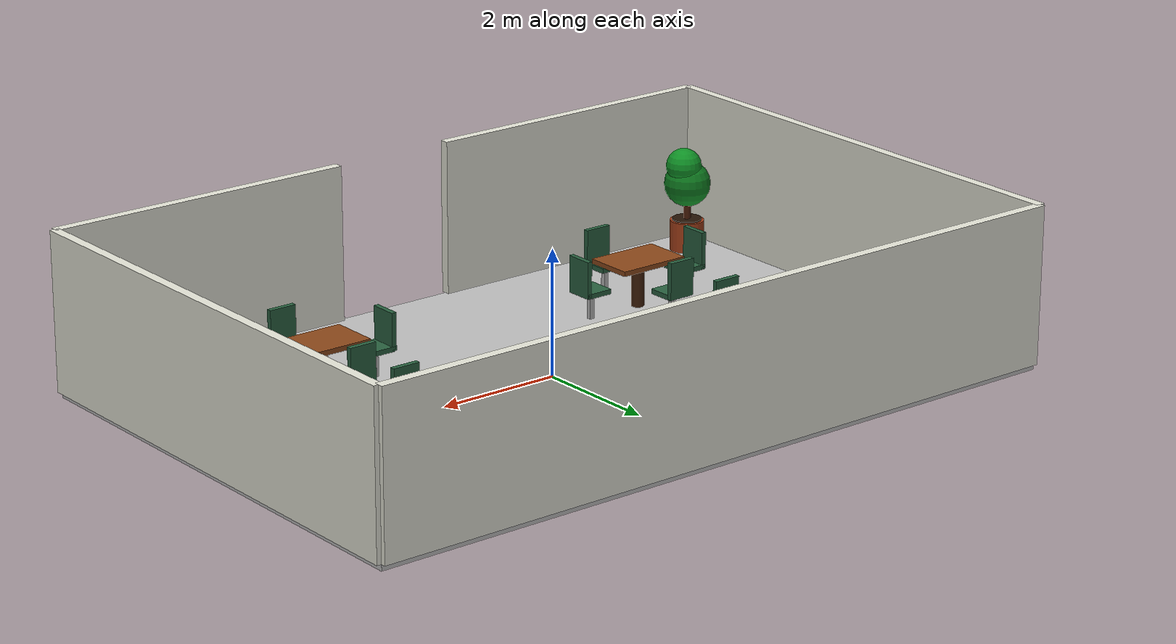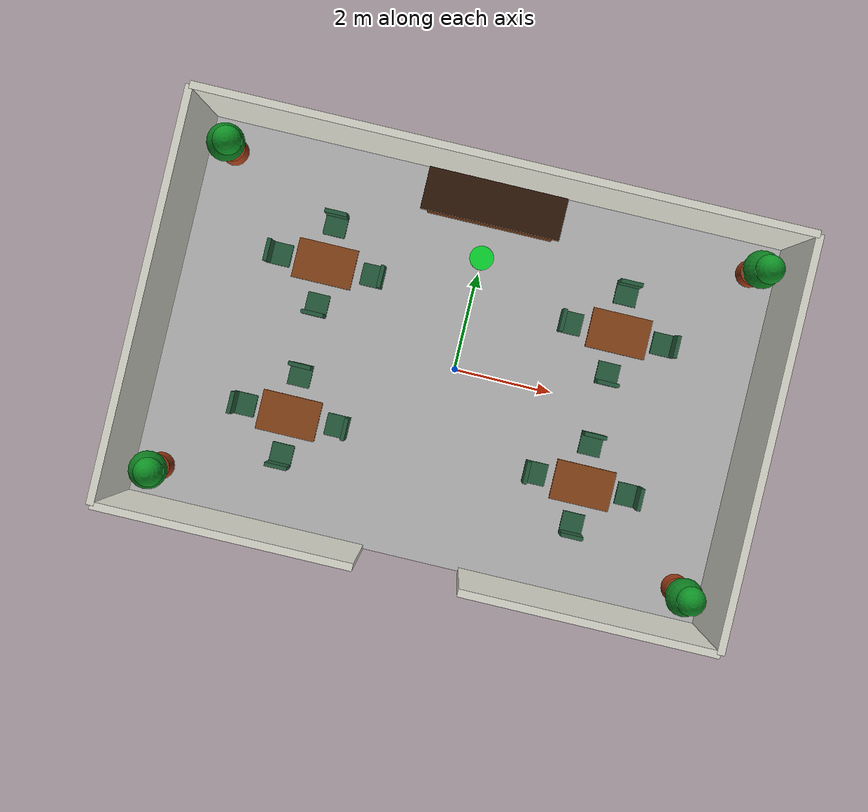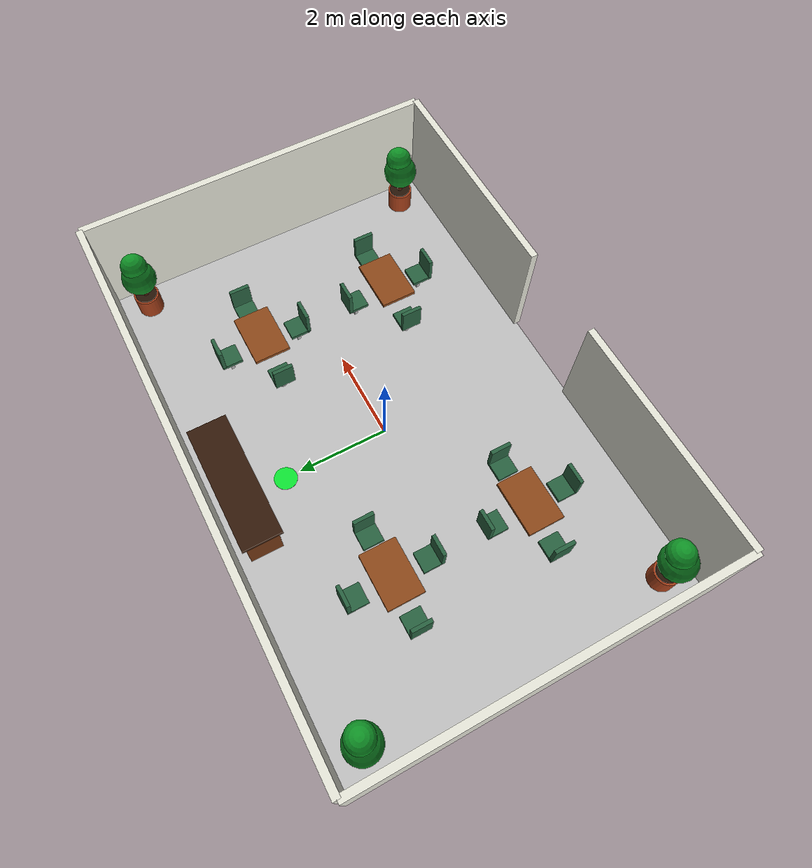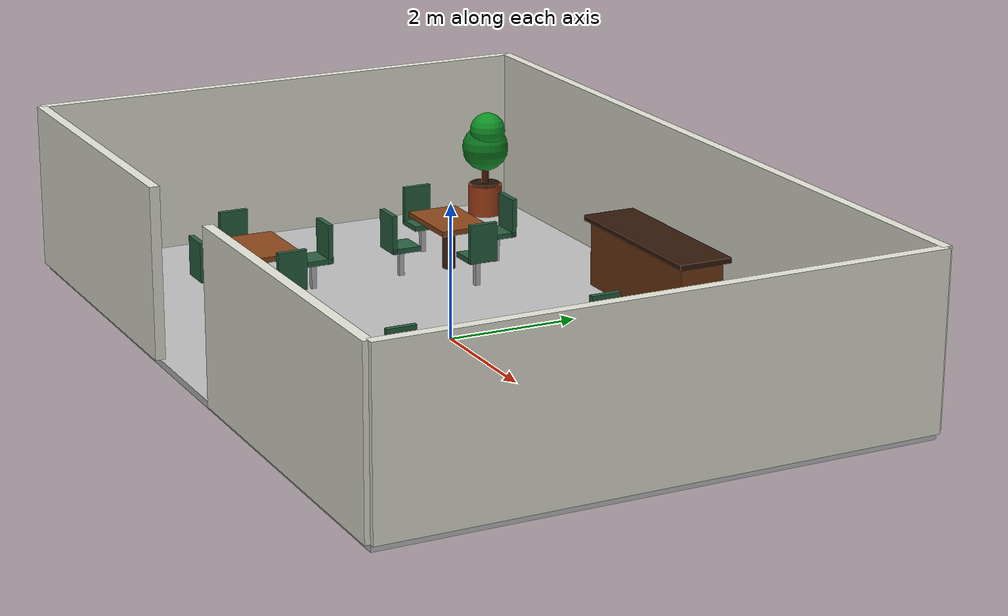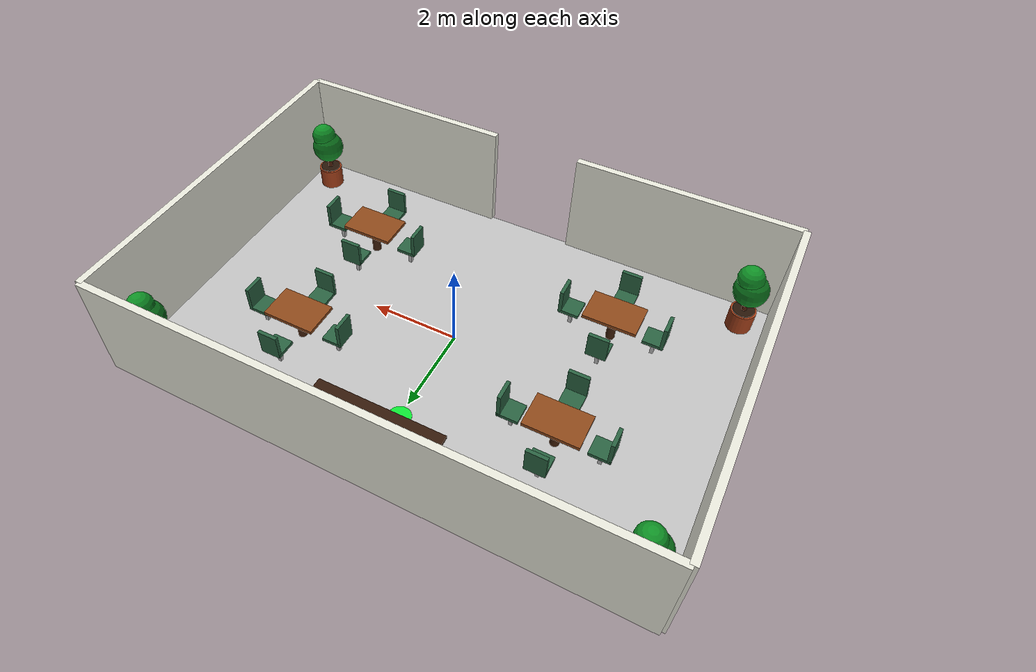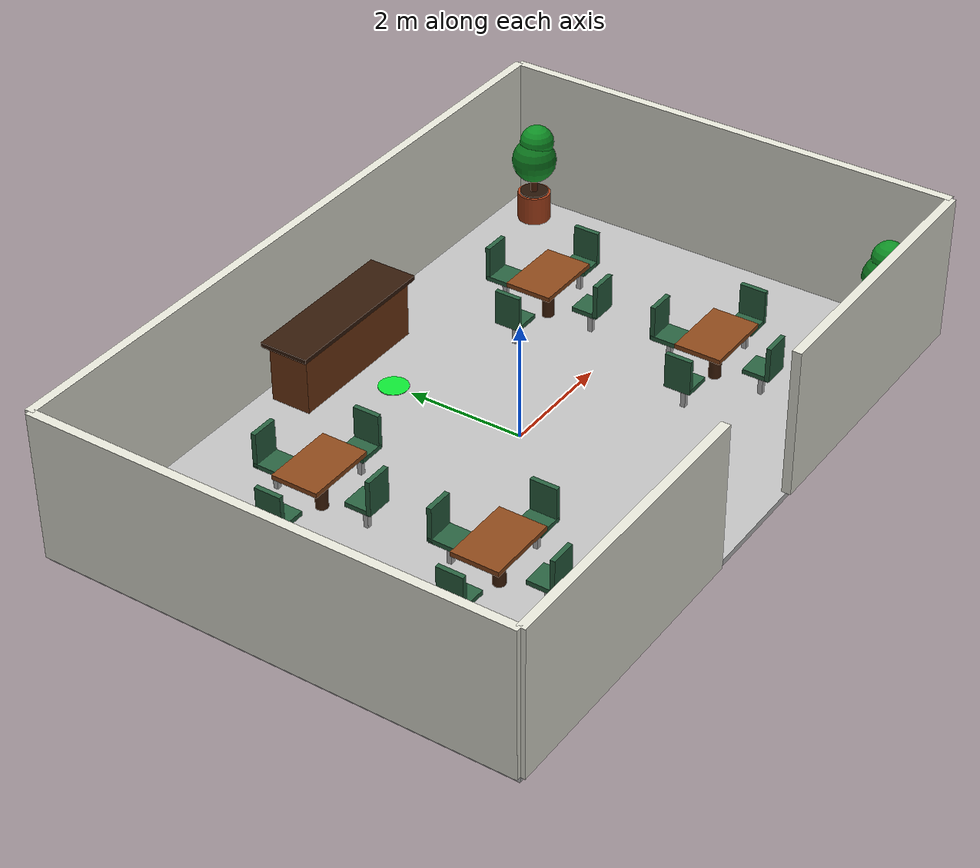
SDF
<?xml version="1.0" ?>
<sdf version="1.10">
  <world name="restaurant">

    <physics name="restaurant_physics" type="ignored">
      <max_step_size>0.001</max_step_size>
      <real_time_factor>1.0</real_time_factor>
    </physics>

    <plugin
      filename="gz-sim-physics-system"
      name="gz::sim::systems::Physics"/>

    <plugin
      filename="gz-sim-user-commands-system"
      name="gz::sim::systems::UserCommands"/>

    <plugin
      filename="gz-sim-scene-broadcaster-system"
      name="gz::sim::systems::SceneBroadcaster"/>
    <plugin
      filename="gz-sim-sensors-system"
      name="gz::sim::systems::Sensors">
      <render_engine>ogre2</render_engine>
    </plugin>

    <plugin
      filename="gz-sim-imu-system"
      name="gz::sim::systems::Imu"/>

    <scene>
      <ambient>0.7 0.7 0.7 1</ambient>
      <background>0.85 0.85 0.85 1</background>
      <shadows>true</shadows>
    </scene>

    <light type="directional" name="sun">
      <cast_shadows>true</cast_shadows>
      <pose>0 0 10 0 0 0</pose>
      <diffuse>0.9 0.9 0.9 1</diffuse>
      <specular>0.2 0.2 0.2 1</specular>
      <direction>-0.5 0.2 -0.9</direction>
    </light>

    <!-- Sol : 12 m × 8 m -->
    <model name="restaurant_floor">
      <static>true</static>
      <pose>0 0 -0.05 0 0 0</pose>
      <link name="floor_link">
        <collision name="floor_collision">
          <geometry>
            <box>
              <size>12 8 0.1</size>
            </box>
          </geometry>
        </collision>
        <visual name="floor_visual">
          <geometry>
            <box>
              <size>12 8 0.1</size>
            </box>
          </geometry>
          <material>
            <ambient>0.65 0.65 0.65 1</ambient>
            <diffuse>0.75 0.75 0.75 1</diffuse>
          </material>
        </visual>
      </link>
    </model>

    <!-- Mur nord -->
    <model name="north_wall">
      <static>true</static>
      <pose>0 4 1.25 0 0 0</pose>
      <link name="wall_link">
        <collision name="collision">
          <geometry><box><size>12 0.15 2.5</size></box></geometry>
        </collision>
        <visual name="visual">
          <geometry><box><size>12 0.15 2.5</size></box></geometry>
          <material>
            <ambient>0.9 0.9 0.85 1</ambient>
            <diffuse>0.9 0.9 0.85 1</diffuse>
          </material>
        </visual>
      </link>
    </model>

    <!-- Mur ouest -->
    <model name="west_wall">
      <static>true</static>
      <pose>-6 0 1.25 0 0 0</pose>
      <link name="wall_link">
        <collision name="collision">
          <geometry><box><size>0.15 8 2.5</size></box></geometry>
        </collision>
        <visual name="visual">
          <geometry><box><size>0.15 8 2.5</size></box></geometry>
          <material>
            <ambient>0.9 0.9 0.85 1</ambient>
            <diffuse>0.9 0.9 0.85 1</diffuse>
          </material>
        </visual>
      </link>
    </model>

    <!-- Mur est -->
    <model name="east_wall">
      <static>true</static>
      <pose>6 0 1.25 0 0 0</pose>
      <link name="wall_link">
        <collision name="collision">
          <geometry><box><size>0.15 8 2.5</size></box></geometry>
        </collision>
        <visual name="visual">
          <geometry><box><size>0.15 8 2.5</size></box></geometry>
          <material>
            <ambient>0.9 0.9 0.85 1</ambient>
            <diffuse>0.9 0.9 0.85 1</diffuse>
          </material>
        </visual>
      </link>
    </model>

    <!-- Mur sud gauche : laisse une entrée centrale -->
    <model name="south_wall_left">
      <static>true</static>
      <pose>-3.5 -4 1.25 0 0 0</pose>
      <link name="wall_link">
        <collision name="collision">
          <geometry><box><size>5 0.15 2.5</size></box></geometry>
        </collision>
        <visual name="visual">
          <geometry><box><size>5 0.15 2.5</size></box></geometry>
          <material>
            <ambient>0.9 0.9 0.85 1</ambient>
            <diffuse>0.9 0.9 0.85 1</diffuse>
          </material>
        </visual>
      </link>
    </model>

    <!-- Mur sud droit -->
    <model name="south_wall_right">
      <static>true</static>
      <pose>3.5 -4 1.25 0 0 0</pose>
      <link name="wall_link">
        <collision name="collision">
          <geometry><box><size>5 0.15 2.5</size></box></geometry>
        </collision>
        <visual name="visual">
          <geometry><box><size>5 0.15 2.5</size></box></geometry>
          <material>
            <ambient>0.9 0.9 0.85 1</ambient>
            <diffuse>0.9 0.9 0.85 1</diffuse>
          </material>
        </visual>
      </link>
    </model>
    <!-- Comptoir de service -->
    <model name="service_counter">
      <static>true</static>
      <pose>0 3.35 0 0 0 0</pose>

      <link name="counter_link">
        <collision name="counter_collision">
          <pose>0 0 0.5 0 0 0</pose>
          <geometry>
            <box>
              <size>2.6 0.7 1.0</size>
            </box>
          </geometry>
        </collision>

        <visual name="counter_body_visual">
          <pose>0 0 0.5 0 0 0</pose>
          <geometry>
            <box>
              <size>2.6 0.7 1.0</size>
            </box>
          </geometry>
          <material>
            <ambient>0.32 0.14 0.05 1</ambient>
            <diffuse>0.45 0.22 0.08 1</diffuse>
          </material>
        </visual>

        <visual name="counter_top_visual">
          <pose>0 0 1.04 0 0 0</pose>
          <geometry>
            <box>
              <size>2.8 0.85 0.08</size>
            </box>
          </geometry>
          <material>
            <ambient>0.12 0.06 0.03 1</ambient>
            <diffuse>0.20 0.10 0.04 1</diffuse>
          </material>
        </visual>
      </link>
    </model>

    <!-- Repère visuel du point de départ et de retour -->
    <model name="home_marker">
      <static>true</static>
      <pose>0 2.35 0.006 0 0 0</pose>

      <link name="home_marker_link">
        <visual name="home_marker_visual">
          <geometry>
            <cylinder>
              <radius>0.25</radius>
              <length>0.012</length>
            </cylinder>
          </geometry>
          <material>
            <ambient>0.05 0.7 0.15 1</ambient>
            <diffuse>0.05 0.9 0.20 1</diffuse>
            <emissive>0.02 0.2 0.04 1</emissive>
          </material>
        </visual>
      </link>
    </model>

    <!-- Tables du côté gauche -->
    <include>
      <uri>model://restaurant_table</uri>
      <name>table_1</name>
      <pose>-3.0 1.45 0 0 0 0</pose>
    </include>

    <include>
      <uri>model://restaurant_table</uri>
      <name>table_3</name>
      <pose>-3.0 -1.65 0 0 0 0</pose>
    </include>

    <!-- Tables du côté droit -->
    <include>
      <uri>model://restaurant_table</uri>
      <name>table_2</name>
      <pose>3.0 1.45 0 0 0 0</pose>
    </include>

    <include>
      <uri>model://restaurant_table</uri>
      <name>table_4</name>
      <pose>3.0 -1.65 0 0 0 0</pose>
    </include>
        <include>
      <uri>model://restaurant_plant</uri>
      <name>plant_1</name>
      <pose>-5.4 3.3 0 0 0 0</pose>
    </include>

    <include>
      <uri>model://restaurant_plant</uri>
      <name>plant_2</name>
      <pose>5.4 3.3 0 0 0 0</pose>
    </include>

    <include>
      <uri>model://restaurant_plant</uri>
      <name>plant_3</name>
      <pose>-5.4 -3.3 0 0 0 0</pose>
    </include>

    <include>
      <uri>model://restaurant_plant</uri>
      <name>plant_4</name>
      <pose>5.4 -3.3 0 0 0 0</pose>
    </include>

  </world>
</sdf>

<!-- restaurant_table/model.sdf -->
<sdf version="1.10">
  <model name="restaurant_table">
    <static>true</static>

    <link name="furniture_link">

      <!-- Volume de collision complet de la table -->
      <collision name="table_collision">
        <pose>0 0 0.38 0 0 0</pose>
        <geometry>
          <box><size>1.2 0.8 0.76</size></box>
        </geometry>
      </collision>

      <!-- Plateau -->
      <visual name="table_top">
        <pose>0 0 0.75 0 0 0</pose>
        <geometry>
          <box><size>1.2 0.8 0.08</size></box>
        </geometry>
        <material>
          <ambient>0.38 0.18 0.07 1</ambient>
          <diffuse>0.55 0.28 0.10 1</diffuse>
        </material>
      </visual>

      <!-- Pied central -->
      <visual name="table_leg">
        <pose>0 0 0.36 0 0 0</pose>
        <geometry>
          <cylinder>
            <radius>0.10</radius>
            <length>0.72</length>
          </cylinder>
        </geometry>
        <material>
          <ambient>0.18 0.08 0.03 1</ambient>
          <diffuse>0.25 0.12 0.04 1</diffuse>
        </material>
      </visual>

      <!-- Chaise nord -->
      <collision name="north_chair_collision">
        <pose>0 0.82 0.4 0 0 0</pose>
        <geometry><box><size>0.45 0.45 0.8</size></box></geometry>
      </collision>
      <visual name="north_chair_seat">
        <pose>0 0.82 0.45 0 0 0</pose>
        <geometry><box><size>0.45 0.45 0.08</size></box></geometry>
        <material>
          <ambient>0.12 0.25 0.18 1</ambient>
          <diffuse>0.16 0.38 0.25 1</diffuse>
        </material>
      </visual>
      <visual name="north_chair_back">
        <pose>0 1.02 0.72 0 0 0</pose>
        <geometry><box><size>0.45 0.08 0.6</size></box></geometry>
        <material>
          <ambient>0.12 0.25 0.18 1</ambient>
          <diffuse>0.16 0.38 0.25 1</diffuse>
        </material>
      </visual>
      <visual name="north_chair_leg">
        <pose>0 0.82 0.21 0 0 0</pose>
        <geometry><box><size>0.08 0.08 0.42</size></box></geometry>
      </visual>

      <!-- Chaise sud -->
      <collision name="south_chair_collision">
        <pose>0 -0.82 0.4 0 0 0</pose>
        <geometry><box><size>0.45 0.45 0.8</size></box></geometry>
      </collision>
      <visual name="south_chair_seat">
        <pose>0 -0.82 0.45 0 0 0</pose>
        <geometry><box><size>0.45 0.45 0.08</size></box></geometry>
        <material>
          <ambient>0.12 0.25 0.18 1</ambient>
          <diffuse>0.16 0.38 0.25 1</diffuse>
        </material>
      </visual>
      <visual name="south_chair_back">
        <pose>0 -1.02 0.72 0 0 0</pose>
        <geometry><box><size>0.45 0.08 0.6</size></box></geometry>
        <material>
          <ambient>0.12 0.25 0.18 1</ambient>
          <diffuse>0.16 0.38 0.25 1</diffuse>
        </material>
      </visual>
      <visual name="south_chair_leg">
        <pose>0 -0.82 0.21 0 0 0</pose>
        <geometry><box><size>0.08 0.08 0.42</size></box></geometry>
      </visual>

      <!-- Chaise est -->
      <collision name="east_chair_collision">
        <pose>0.95 0 0.4 0 0 0</pose>
        <geometry><box><size>0.45 0.45 0.8</size></box></geometry>
      </collision>
      <visual name="east_chair_seat">
        <pose>0.95 0 0.45 0 0 0</pose>
        <geometry><box><size>0.45 0.45 0.08</size></box></geometry>
        <material>
          <ambient>0.12 0.25 0.18 1</ambient>
          <diffuse>0.16 0.38 0.25 1</diffuse>
        </material>
      </visual>
      <visual name="east_chair_back">
        <pose>1.15 0 0.72 0 0 0</pose>
        <geometry><box><size>0.08 0.45 0.6</size></box></geometry>
        <material>
          <ambient>0.12 0.25 0.18 1</ambient>
          <diffuse>0.16 0.38 0.25 1</diffuse>
        </material>
      </visual>
      <visual name="east_chair_leg">
        <pose>0.95 0 0.21 0 0 0</pose>
        <geometry><box><size>0.08 0.08 0.42</size></box></geometry>
      </visual>

      <!-- Chaise ouest -->
      <collision name="west_chair_collision">
        <pose>-0.95 0 0.4 0 0 0</pose>
        <geometry><box><size>0.45 0.45 0.8</size></box></geometry>
      </collision>
      <visual name="west_chair_seat">
        <pose>-0.95 0 0.45 0 0 0</pose>
        <geometry><box><size>0.45 0.45 0.08</size></box></geometry>
        <material>
          <ambient>0.12 0.25 0.18 1</ambient>
          <diffuse>0.16 0.38 0.25 1</diffuse>
        </material>
      </visual>
      <visual name="west_chair_back">
        <pose>-1.15 0 0.72 0 0 0</pose>
        <geometry><box><size>0.08 0.45 0.6</size></box></geometry>
        <material>
          <ambient>0.12 0.25 0.18 1</ambient>
          <diffuse>0.16 0.38 0.25 1</diffuse>
        </material>
      </visual>
      <visual name="west_chair_leg">
        <pose>-0.95 0 0.21 0 0 0</pose>
        <geometry><box><size>0.08 0.08 0.42</size></box></geometry>
      </visual>

    </link>
  </model>
</sdf>

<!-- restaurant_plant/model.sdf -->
<sdf version="1.10">
  <model name="restaurant_plant">
    <static>true</static>

    <link name="plant_link">
      <!-- Collision du pot détectable par le robot -->
      <collision name="pot_collision">
        <pose>0 0 0.25 0 0 0</pose>
        <geometry>
          <cylinder>
            <radius>0.28</radius>
            <length>0.5</length>
          </cylinder>
        </geometry>
      </collision>

      <visual name="pot_visual">
        <pose>0 0 0.25 0 0 0</pose>
        <geometry>
          <cylinder>
            <radius>0.28</radius>
            <length>0.5</length>
          </cylinder>
        </geometry>
        <material>
          <ambient>0.45 0.16 0.07 1</ambient>
          <diffuse>0.65 0.25 0.10 1</diffuse>
        </material>
      </visual>

      <visual name="soil_visual">
        <pose>0 0 0.51 0 0 0</pose>
        <geometry>
          <cylinder>
            <radius>0.24</radius>
            <length>0.03</length>
          </cylinder>
        </geometry>
        <material>
          <ambient>0.10 0.05 0.02 1</ambient>
          <diffuse>0.15 0.08 0.03 1</diffuse>
        </material>
      </visual>

      <visual name="trunk_visual">
        <pose>0 0 0.83 0 0 0</pose>
        <geometry>
          <cylinder>
            <radius>0.06</radius>
            <length>0.65</length>
          </cylinder>
        </geometry>
        <material>
          <ambient>0.20 0.08 0.03 1</ambient>
          <diffuse>0.30 0.12 0.04 1</diffuse>
        </material>
      </visual>

      <visual name="lower_foliage">
        <pose>0 0 1.12 0 0 0</pose>
        <geometry>
          <sphere><radius>0.38</radius></sphere>
        </geometry>
        <material>
          <ambient>0.03 0.30 0.08 1</ambient>
          <diffuse>0.05 0.48 0.12 1</diffuse>
        </material>
      </visual>

      <visual name="upper_foliage">
        <pose>0.08 0 1.43 0 0 0</pose>
        <geometry>
          <sphere><radius>0.29</radius></sphere>
        </geometry>
        <material>
          <ambient>0.04 0.38 0.10 1</ambient>
          <diffuse>0.06 0.58 0.15 1</diffuse>
        </material>
      </visual>
    </link>
  </model>
</sdf>
